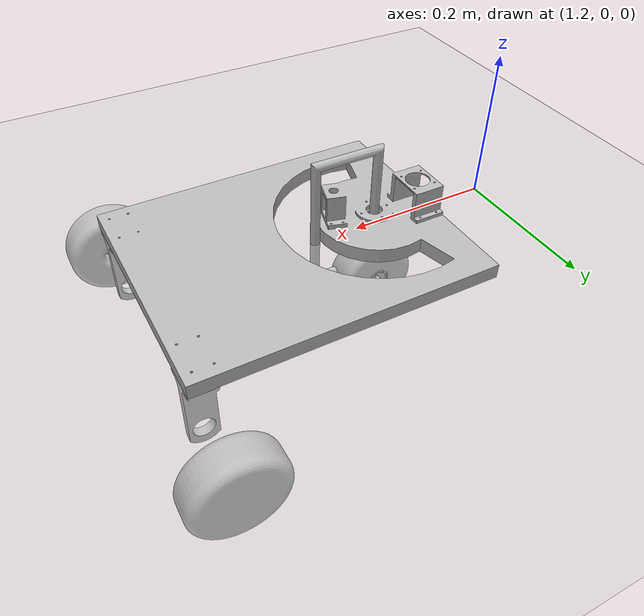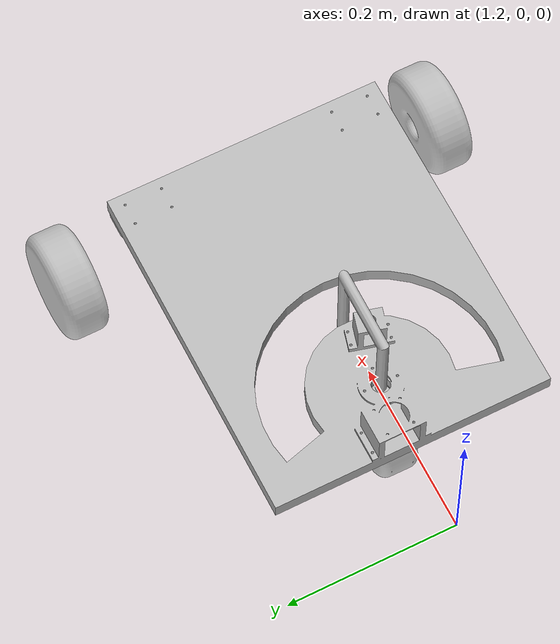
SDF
<?xml version="1.0" ?>
<sdf version="1.6">
  <world name="default">
    <physics type="ode">
      <ode>
        <solver>
          <type>quick</type>
          <iters>100</iters>
          <sor>1.0</sor>
        </solver>
        <constraints>
          <cfm>0.0</cfm>
          <erp>0.9</erp>
          <contact_max_correcting_vel>0.1</contact_max_correcting_vel>
          <contact_surface_layer>0.0</contact_surface_layer>
        </constraints>
      </ode>
      <real_time_update_rate>0</real_time_update_rate>
      <max_step_size>0.0025</max_step_size>
    </physics>

      <include>
      <uri>model://sun</uri>
    </include>

    <model name="ground_plane">
      <static>true</static>
      <link name="link">
        <collision name="collision">
          <geometry>
            <plane>
              <normal>0 0 1</normal>
              <size>5000 5000</size>
            </plane>
          </geometry>
          <surface>
            <friction>
              <ode>
                <mu>1</mu>
                <mu2>1</mu2>
              </ode>
            </friction>
          </surface>
        </collision>
        <visual name="runway">
          <pose>000 0 0.005 0 0 0.1</pose>
          <cast_shadows>false</cast_shadows>
          <geometry>
            <plane>
              <normal>0 0 1</normal>
              <size>1829 45</size>
            </plane>
          </geometry>
          <material>
            <script>
              <uri>file://media/materials/scripts/gazebo.material</uri>
              <name>Gazebo/Runway</name>
            </script>
          </material>
        </visual>

        <visual name="grass">
          <pose>0 0 -0.1 0 0 0</pose>
          <cast_shadows>false</cast_shadows>
          <geometry>
            <plane>
              <normal>0 0 1</normal>
              <size>5000 5000</size>
            </plane>
          </geometry>
          <material>
            <script>
              <uri>file://media/materials/scripts/gazebo.material</uri>
              <name>Gazebo/Grass</name>
            </script>
          </material>
        </visual>
      </link>
    </model>

    <model name="HEW_test">
      <pose>1.5 0 0 0 0 0 </pose>
      <include>
        <uri>model://HEW_test</uri>
        <pose>0 0 0 0 0 0</pose>
      </include>
    </model>

  </world>
</sdf>

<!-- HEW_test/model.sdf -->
<sdf version='1.6'>
  <model name='HEW_test'>
    <link name='base_link'>
      <pose frame=''>0 0 0 0 -0 0</pose>
      <inertial>
        <pose frame=''>0.017915 0.00819 -5.2e-05 0 -0 0</pose>
        <mass>2.40036</mass>
        <inertia>
          <ixx>0.0213869</ixx>
          <ixy>1.89992e-09</ixy>
          <ixz>1.44203e-06</ixz>
          <iyy>0.0542879</iyy>
          <iyz>1.97467e-08</iyz>
          <izz>0.0333137</izz>
        </inertia>
      </inertial>
      <collision name='base_link_collision'>
        <pose frame=''>0 0 0 0 -0 0</pose>
        <geometry>
          <mesh>
            <scale>1 1 1</scale>
            <uri>model://HEW_test/meshes/base_link_col.STL</uri>
          </mesh>
        </geometry>
      </collision>
      <visual name='base_link_visual'>
        <pose frame=''>0 0 0 0 -0 0</pose>
        <geometry>
          <mesh>
            <scale>1 1 1</scale>
            <uri>model://HEW_test/meshes/base_link.STL</uri>
          </mesh>
        </geometry>
      </visual>
    </link>
    <link name='Arm_Link'>
      <pose frame=''>-0.127 0 -0.001568 0 -0 0</pose>
      <inertial>
        <pose frame=''>0.055393 -0.000468 0.050229 0 -0 0</pose>
        <mass>0.021131</mass>
        <inertia>
          <ixx>7.7995e-05</ixx>
          <ixy>2.6771e-07</ixy>
          <ixz>1.8645e-05</ixz>
          <iyy>0.00010972</iyy>
          <iyz>-1.5689e-07</iyz>
          <izz>3.2398e-05</izz>
        </inertia>
      </inertial>
      <collision name='Arm_Link_collision'>
        <pose frame=''>0 0 0 0 -0 0</pose>
        <geometry>
          <mesh>
            <scale>1 1 1</scale>
            <uri>model://HEW_test/meshes/Arm_Link_col.STL</uri>
          </mesh>
        </geometry>
      </collision>
      <visual name='Arm_Link_visual'>
        <pose frame=''>0 0 0 0 -0 0</pose>
        <geometry>
          <mesh>
            <scale>1 1 1</scale>
            <uri>model://HEW_test/meshes/Arm_Link.STL</uri>
          </mesh>
        </geometry>
      </visual>
    </link>
    <joint name='Arm_Link_cont' type='revolute'>
      <child>Arm_Link</child>
      <parent>base_link</parent>
      <axis>
        <xyz>0 0 -1</xyz>
        <limit>
          <lower>-1.745</lower>
          <upper>1.745</upper>
          <effort>0</effort>
          <velocity>20</velocity>
        </limit>
        <dynamics>
          <spring_reference>0</spring_reference>
          <spring_stiffness>0</spring_stiffness>
        </dynamics>
        <use_parent_model_frame>1</use_parent_model_frame>
      </axis>
    </joint>
    <link name='Front_Wheel'>
      <pose frame=''>-0.127 0 -0.086868 0 0 -0.008442</pose>
      <inertial>
        <pose frame=''>-0.003311 0 0.003337 0 -0 0</pose>
        <mass>0.33388</mass>
        <inertia>
          <ixx>0.00011765</ixx>
          <ixy>4.0231e-12</ixy>
          <ixz>3.047e-06</ixz>
          <iyy>0.00033015</iyy>
          <iyz>3.8519e-10</iyz>
          <izz>0.00033254</izz>
        </inertia>
      </inertial>
      <collision name='Front_Wheel_collision'>
        <pose frame=''>0 0 0 0 -0 0</pose>
        <geometry>
          <mesh>
            <scale>1 1 1</scale>
            <uri>model://HEW_test/meshes/Front_Wheel_col.STL</uri>
          </mesh>
        </geometry>
      </collision>
      <visual name='Front_Wheel_visual'>
        <pose frame=''>0 0 0 0 -0 0</pose>
        <geometry>
          <mesh>
            <scale>1 1 1</scale>
            <uri>model://HEW_test/meshes/Front_Wheel.STL</uri>
          </mesh>
        </geometry>
      </visual>
    </link>
    <joint name='Front_Wheel_Cont' type='revolute'>
      <child>Front_Wheel</child>
      <parent>base_link</parent>
      <axis>
        <xyz>-0.999964 0.008442 0</xyz>
        <limit>
          <lower>-1e+16</lower>
          <upper>1e+16</upper>
        </limit>
        <dynamics>
          <spring_reference>0</spring_reference>
          <spring_stiffness>0</spring_stiffness>
        </dynamics>
        <use_parent_model_frame>1</use_parent_model_frame>
      </axis>
    </joint>
    <link name='Rear_Wheels_Link'>
      <pose frame=''>0.18415 0 -0.08635 0 -0 0</pose>
      <inertial>
        <pose frame=''>0 -0 0 0 -0 0</pose>
        <mass>1.1992</mass>
        <inertia>
          <ixx>0.001439</ixx>
          <ixy>-1.7333e-20</ixy>
          <ixz>-5.5793e-20</ixz>
          <iyy>0.0023958</iyy>
          <iyz>1.8973e-20</iyz>
          <izz>0.001439</izz>
        </inertia>
      </inertial>
      <collision name='Rear_Wheels_Link_collision'>
        <pose frame=''>0 0 0 0 -0 0</pose>
        <geometry>
          <mesh>
            <scale>1 1 1</scale>
            <uri>model://HEW_test/meshes/Rear_Wheels_Link_col.STL</uri>
          </mesh>
        </geometry>
      </collision>
      <visual name='Rear_Wheels_Link_visual'>
        <pose frame=''>0 0 0 0 -0 0</pose>
        <geometry>
          <mesh>
            <scale>1 1 1</scale>
            <uri>model://HEW_test/meshes/Rear_Wheels_Link.STL</uri>
          </mesh>
        </geometry>
      </visual>
    </link>
    <joint name='Rear_Wheels_cont' type='revolute'>
      <child>Rear_Wheels_Link</child>
      <parent>base_link</parent>
      <axis>
        <xyz>0 1 0</xyz>
        <limit>
          <lower>-1e+16</lower>
          <upper>1e+16</upper>
        </limit>
        <dynamics>
          <spring_reference>0</spring_reference>
          <spring_stiffness>0</spring_stiffness>
        </dynamics>
        <use_parent_model_frame>1</use_parent_model_frame>
      </axis>
    </joint>
  </model>
</sdf>
